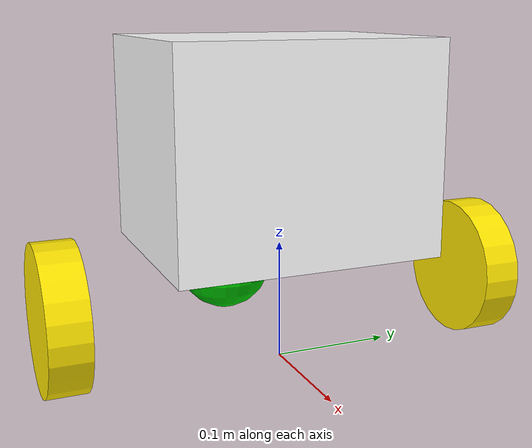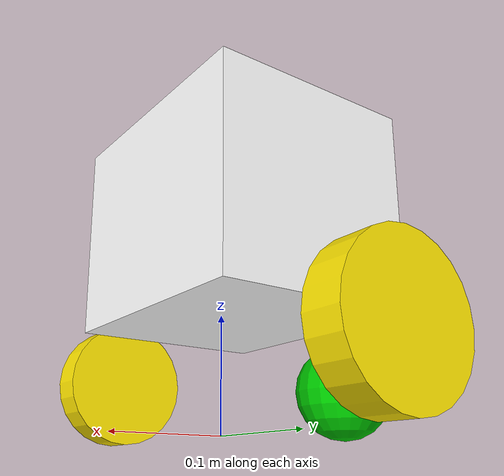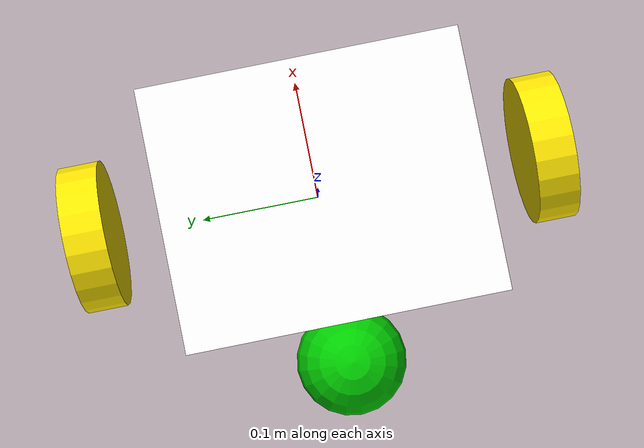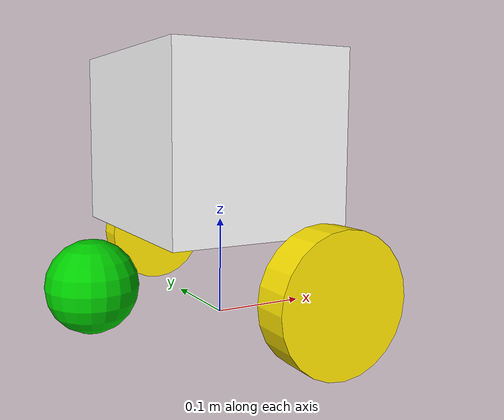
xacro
<?xml version="1.0" ?>

<robot xmlns:xacro="http://ros.org/wiki/xacro">

	<xacro:include filename="inertial_macros.xacro"/>

	<!-- Constants -->
	<xacro:property name="pi_const" value="3.14159265356" />
	<xacro:property name="half_pi_const" value="1.570796" />

	<!-- Material colors -->
	<material name="white">
		<color rgba="1.0 1.0 1.0 1.0"/>
	</material>

	<material name="yellow">
		<color rgba="1.0 0.9 0.0 1.0"/>
	</material>

	<material name="green">
		<color rgba="0.0 0.8 0.0 1.0"/>
	</material>

	<material name="red">
		<color rgba="0.8 0.0 0.0 1.0"/>
	</material>

	<!-- Body geometry -->
	<xacro:property name="body_link_x_dim" value="0.18" />
	<xacro:property name="body_link_y_dim" value="0.22" />
	<xacro:property name="body_link_z_dim" value="0.175" />
	<xacro:property name="body_link_z_offset" value="0.035" />
	<xacro:property name="body_mass" value="0.5" />

	<!-- Wheel geometry -->
	<xacro:property name="wheel_link_radius" value="0.06" />
	<xacro:property name="wheel_link_length" value="0.0325" />
	<xacro:property name="wheel_link_x_location" value="0.105" />
	<xacro:property name="wheel_suport_y_offset" value="0.075"/>
	<xacro:property name="wheel_link_mass" value="0.1"/>

	<!-- Sphere geometry -->
	<xacro:property name="sphere_radius" value="0.045" />
	<xacro:property name="sphere_x_offset" value="0.035"/>
	<xacro:property name="sphere_mass" value="0.1" />

	<!-- base link-->
	<link name="base_link">
		<origin xyz= "0 0 0" />
	</link>

	<!-- base footprint -->>

	<!-- Chassis -->
	<joint name="chassis_joint" type="fixed">
		<parent link = "base_link"/>
		<child link = "chassis_link"/>
		<origin xyz="-${wheel_link_x_location} 0 ${wheel_link_radius + body_link_z_offset}"/>
	</joint>

	<link name="chassis_link">
		<visual>
			<origin xyz="${body_link_x_dim/2} 0 ${body_link_z_dim/2}"/>
			<geometry>
				<box size="${body_link_x_dim} ${body_link_y_dim} ${body_link_z_dim}" />
			</geometry>
			<material name="white"/>
		</visual>
		<collision>
			<origin xyz="${body_link_x_dim/2} 0 ${body_link_z_dim/2}"/>
			<geometry>
				<box size="${body_link_x_dim} ${body_link_y_dim} ${body_link_z_dim}" />
			</geometry>
        </collision>
        <xacro:inertial_box mass="${body_mass}" x="${body_link_x_dim}" y="${body_link_y_dim}" z="${body_link_z_dim}">
            <origin xyz="${body_link_x_dim/2} 0 ${body_link_z_dim/2}" rpy="0 0 0" />
        </xacro:inertial_box>
	</link>

	<!-- right_wheel_link -->
	<joint name="right_wheel_joint" type="fixed">
		<origin xyz="0 -${body_link_y_dim/2 + wheel_suport_y_offset} ${wheel_link_radius}" rpy="${pi_const/2} 0 0"/>
		<parent link="base_link"/>
		<child link="right_wheel_link"/>
		<axis xyz="0 0 -1" />
	</joint>

	<link name="right_wheel_link">
		<visual>
			<geometry>
				<cylinder radius="${wheel_link_radius}" length="${wheel_link_length}"/>
			</geometry>
			<material name ="yellow" />
		</visual>
		<collision>
            <geometry>
				<cylinder radius="${wheel_link_radius}" length="${wheel_link_length}"/>
			</geometry>
        </collision>
        <xacro:inertial_cylinder mass="${wheel_link_mass}" length="${wheel_link_length}" radius="${wheel_link_radius}">
            <origin xyz="0 0 0" rpy="0 0 0"/>
        </xacro:inertial_cylinder>
	</link>

	<!-- left_wheel_link -->
	<joint name="left_wheel_joint" type="fixed">
		<origin xyz="0 ${body_link_y_dim/2 + wheel_suport_y_offset} ${wheel_link_radius}" rpy="${pi_const/2} 0 0"/>
		<parent link="base_link"/>
		<child link="left_wheel_link"/>
		<axis xyz="0 0 1" />
	</joint>

	<link name="left_wheel_link">
		<visual>
			<geometry>
				<cylinder radius="${wheel_link_radius}" length = "${wheel_link_length}"/>
			</geometry>
			<material name ="yellow" />
		</visual>
		<collision>
			<geometry>
				<cylinder radius="${wheel_link_radius}" length = "${wheel_link_length}"/>
			</geometry>
		</collision>
		<xacro:inertial_cylinder mass="${wheel_link_mass}" length="${wheel_link_length}" radius="${wheel_link_radius}">
            <origin xyz="0 0 0" rpy="0 0 0"/>
        </xacro:inertial_cylinder>
	</link>

	<!-- caster wheel -->
	<joint name="caster_wheel_joint" type="fixed">
		<parent link="base_link"/>
		<child link="caster_wheel_link"/>
		<origin xyz="-${wheel_link_x_location + sphere_x_offset} 0 ${sphere_radius}" rpy="0 0 0"/>
	</joint>

	<link name="caster_wheel_link">
		<visual>
			<geometry>
				<sphere radius="${sphere_radius}" />
			</geometry>
			<material name ="green" />
		</visual>
		<collision>
			<geometry>
				<sphere radius="${sphere_radius}" />
			</geometry>
		</collision>
		<xacro:inertial_sphere mass="${sphere_mass}" radius="${sphere_radius}">
			<origin xyz="0 0 0" rpy="0 0 0"/>
		</xacro:inertial_sphere>
	</link>

</robot>
